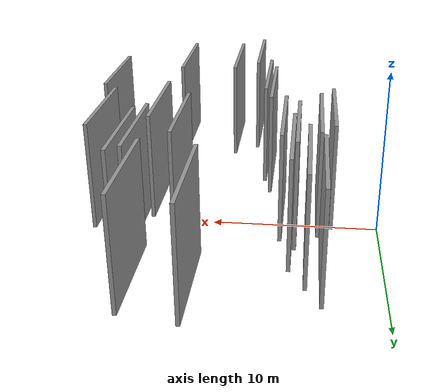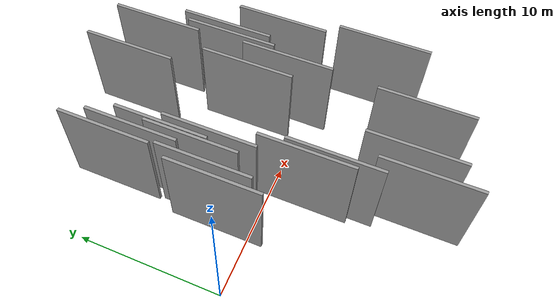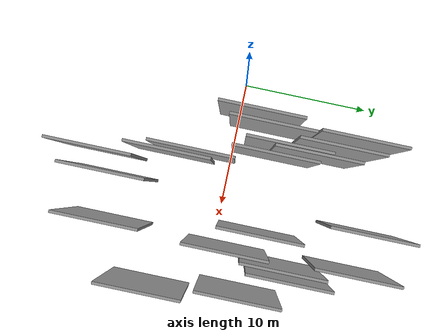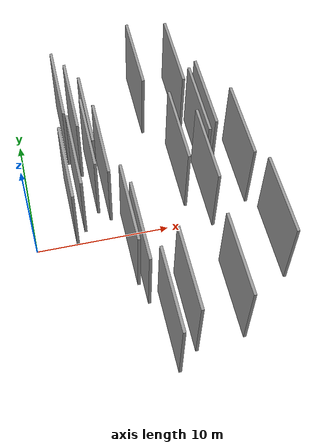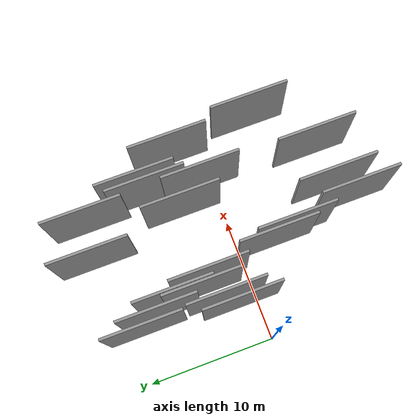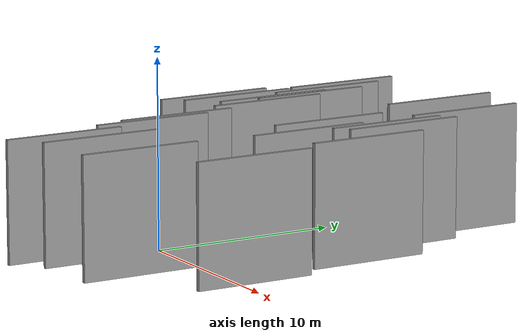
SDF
<sdf version="1.6">
 <world name="default">
  <scene>
   <sky><clouds><speed>12</speed></clouds></sky>
   <ambient>0.4 0.4 0.4 1</ambient>
   <background>0.7 0.7 0.7 1</background>
   <shadows>1</shadows>
  </scene>
  <gravity>0 0 -9.8066</gravity>
  <magnetic_field>6e-06 2.3e-05 -4.2e-05</magnetic_field>
  <physics default="0" name="default_physics" type="ode">
   <ode>
    <solver>
     <type>quick</type>
     <iters>10</iters>
     <sor>1.0</sor>
     <use_dynamic_moi_rescaling>0</use_dynamic_moi_rescaling>
    </solver>
    <constraints>
     <cfm>0</cfm>
     <erp>0.2</erp>
     <contact_max_correcting_vel>100</contact_max_correcting_vel>
     <contact_surface_layer>0.001</contact_surface_layer>
    </constraints>
   </ode>
   <max_step_size>0.004</max_step_size>
   <real_time_factor>1</real_time_factor>
   <real_time_update_rate>250</real_time_update_rate>
  </physics>
  <light name="sun" type="directional">
   <pose>0 0 10 0 0 0</pose>
   <diffuse>0.8 0.8 0.8 1</diffuse>
   <specular>0.2 0.2 0.2 1</specular>
   <attenuation>
    <range>1000</range>
    <constant>0.9</constant>
    <linear>0.01</linear>
    <quadratic>0.001</quadratic>
   </attenuation>
   <direction>-0.5 0.1 -0.9</direction>
  </light>
  <model name="grey_wall_1">
   <static>1</static>
   <pose>5.1587 5.8665 2.5 0.000000 0.000000 1.570796</pose>
   <link name="link">
    <pose>0 0 3.00 0 0 0</pose>
    <collision name="collision"><geometry><box><size>6.00 0.2 6.00</size></box></geometry></collision>
    <visual name="visual">
     <cast_shadows>0</cast_shadows>
     <geometry><box><size>6.00 0.2 6.00</size></box></geometry>
     <material>
      <script>
       <uri>model://grey_wall/materials/scripts</uri>
       <uri>model://grey_wall/materials/textures</uri>
       <name>vrc/grey_wall</name>
      </script>
     </material>
    </visual>
   </link>
  </model>
  <model name="grey_wall_2">
   <static>1</static>
   <pose>6.9605 -4.1079 2.5 0.000000 0.000000 1.570796</pose>
   <link name="link">
    <pose>0 0 3.00 0 0 0</pose>
    <collision name="collision"><geometry><box><size>6.00 0.2 6.00</size></box></geometry></collision>
    <visual name="visual">
     <cast_shadows>0</cast_shadows>
     <geometry><box><size>6.00 0.2 6.00</size></box></geometry>
     <material>
      <script>
       <uri>model://grey_wall/materials/scripts</uri>
       <uri>model://grey_wall/materials/textures</uri>
       <name>vrc/grey_wall</name>
      </script>
     </material>
    </visual>
   </link>
  </model>
  <model name="grey_wall_3">
   <static>1</static>
   <pose>3.0186 1.5339 2.5 0.000000 0.000000 1.570796</pose>
   <link name="link">
    <pose>0 0 3.00 0 0 0</pose>
    <collision name="collision"><geometry><box><size>6.00 0.2 6.00</size></box></geometry></collision>
    <visual name="visual">
     <cast_shadows>0</cast_shadows>
     <geometry><box><size>6.00 0.2 6.00</size></box></geometry>
     <material>
      <script>
       <uri>model://grey_wall/materials/scripts</uri>
       <uri>model://grey_wall/materials/textures</uri>
       <name>vrc/grey_wall</name>
      </script>
     </material>
    </visual>
   </link>
  </model>
  <model name="grey_wall_4">
   <static>1</static>
   <pose>9.2179 -8.1273 2.5 0.000000 0.000000 1.570796</pose>
   <link name="link">
    <pose>0 0 3.00 0 0 0</pose>
    <collision name="collision"><geometry><box><size>6.00 0.2 6.00</size></box></geometry></collision>
    <visual name="visual">
     <cast_shadows>0</cast_shadows>
     <geometry><box><size>6.00 0.2 6.00</size></box></geometry>
     <material>
      <script>
       <uri>model://grey_wall/materials/scripts</uri>
       <uri>model://grey_wall/materials/textures</uri>
       <name>vrc/grey_wall</name>
      </script>
     </material>
    </visual>
   </link>
  </model>
  <model name="grey_wall_5">
   <static>1</static>
   <pose>12.8485 1.0567 2.5 0.000000 0.000000 1.570796</pose>
   <link name="link">
    <pose>0 0 3.00 0 0 0</pose>
    <collision name="collision"><geometry><box><size>6.00 0.2 6.00</size></box></geometry></collision>
    <visual name="visual">
     <cast_shadows>0</cast_shadows>
     <geometry><box><size>6.00 0.2 6.00</size></box></geometry>
     <material>
      <script>
       <uri>model://grey_wall/materials/scripts</uri>
       <uri>model://grey_wall/materials/textures</uri>
       <name>vrc/grey_wall</name>
      </script>
     </material>
    </visual>
   </link>
  </model>
  <model name="grey_wall_6">
   <static>1</static>
   <pose>6.5647 -2.5653 2.5 0.000000 0.000000 1.570796</pose>
   <link name="link">
    <pose>0 0 3.00 0 0 0</pose>
    <collision name="collision"><geometry><box><size>6.00 0.2 6.00</size></box></geometry></collision>
    <visual name="visual">
     <cast_shadows>0</cast_shadows>
     <geometry><box><size>6.00 0.2 6.00</size></box></geometry>
     <material>
      <script>
       <uri>model://grey_wall/materials/scripts</uri>
       <uri>model://grey_wall/materials/textures</uri>
       <name>vrc/grey_wall</name>
      </script>
     </material>
    </visual>
   </link>
  </model>
  <model name="grey_wall_7">
   <static>1</static>
   <pose>3.7384 2.4550 2.5 0.000000 0.000000 1.570796</pose>
   <link name="link">
    <pose>0 0 3.00 0 0 0</pose>
    <collision name="collision"><geometry><box><size>6.00 0.2 6.00</size></box></geometry></collision>
    <visual name="visual">
     <cast_shadows>0</cast_shadows>
     <geometry><box><size>6.00 0.2 6.00</size></box></geometry>
     <material>
      <script>
       <uri>model://grey_wall/materials/scripts</uri>
       <uri>model://grey_wall/materials/textures</uri>
       <name>vrc/grey_wall</name>
      </script>
     </material>
    </visual>
   </link>
  </model>
  <model name="grey_wall_8">
   <static>1</static>
   <pose>3.5596 8.6978 2.5 0.000000 0.000000 1.570796</pose>
   <link name="link">
    <pose>0 0 3.00 0 0 0</pose>
    <collision name="collision"><geometry><box><size>6.00 0.2 6.00</size></box></geometry></collision>
    <visual name="visual">
     <cast_shadows>0</cast_shadows>
     <geometry><box><size>6.00 0.2 6.00</size></box></geometry>
     <material>
      <script>
       <uri>model://grey_wall/materials/scripts</uri>
       <uri>model://grey_wall/materials/textures</uri>
       <name>vrc/grey_wall</name>
      </script>
     </material>
    </visual>
   </link>
  </model>
  <model name="grey_wall_9">
   <static>1</static>
   <pose>7.8035 -9.3064 2.5 0.000000 0.000000 1.570796</pose>
   <link name="link">
    <pose>0 0 3.00 0 0 0</pose>
    <collision name="collision"><geometry><box><size>6.00 0.2 6.00</size></box></geometry></collision>
    <visual name="visual">
     <cast_shadows>0</cast_shadows>
     <geometry><box><size>6.00 0.2 6.00</size></box></geometry>
     <material>
      <script>
       <uri>model://grey_wall/materials/scripts</uri>
       <uri>model://grey_wall/materials/textures</uri>
       <name>vrc/grey_wall</name>
      </script>
     </material>
    </visual>
   </link>
  </model>
  <model name="grey_wall_10">
   <static>1</static>
   <pose>11.3080 3.1218 2.5 0.000000 0.000000 1.570796</pose>
   <link name="link">
    <pose>0 0 3.00 0 0 0</pose>
    <collision name="collision"><geometry><box><size>6.00 0.2 6.00</size></box></geometry></collision>
    <visual name="visual">
     <cast_shadows>0</cast_shadows>
     <geometry><box><size>6.00 0.2 6.00</size></box></geometry>
     <material>
      <script>
       <uri>model://grey_wall/materials/scripts</uri>
       <uri>model://grey_wall/materials/textures</uri>
       <name>vrc/grey_wall</name>
      </script>
     </material>
    </visual>
   </link>
  </model>
  <model name="grey_wall_11">
   <static>1</static>
   <pose>13.9393 5.6763 2.5 0.000000 0.000000 1.570796</pose>
   <link name="link">
    <pose>0 0 3.00 0 0 0</pose>
    <collision name="collision"><geometry><box><size>6.00 0.2 6.00</size></box></geometry></collision>
    <visual name="visual">
     <cast_shadows>0</cast_shadows>
     <geometry><box><size>6.00 0.2 6.00</size></box></geometry>
     <material>
      <script>
       <uri>model://grey_wall/materials/scripts</uri>
       <uri>model://grey_wall/materials/textures</uri>
       <name>vrc/grey_wall</name>
      </script>
     </material>
    </visual>
   </link>
  </model>
  <model name="grey_wall_12">
   <static>1</static>
   <pose>15.7667 2.5458 2.5 0.000000 0.000000 1.570796</pose>
   <link name="link">
    <pose>0 0 3.00 0 0 0</pose>
    <collision name="collision"><geometry><box><size>6.00 0.2 6.00</size></box></geometry></collision>
    <visual name="visual">
     <cast_shadows>0</cast_shadows>
     <geometry><box><size>6.00 0.2 6.00</size></box></geometry>
     <material>
      <script>
       <uri>model://grey_wall/materials/scripts</uri>
       <uri>model://grey_wall/materials/textures</uri>
       <name>vrc/grey_wall</name>
      </script>
     </material>
    </visual>
   </link>
  </model>
  <model name="grey_wall_13">
   <static>1</static>
   <pose>13.3102 5.1180 2.5 0.000000 0.000000 1.570796</pose>
   <link name="link">
    <pose>0 0 3.00 0 0 0</pose>
    <collision name="collision"><geometry><box><size>6.00 0.2 6.00</size></box></geometry></collision>
    <visual name="visual">
     <cast_shadows>0</cast_shadows>
     <geometry><box><size>6.00 0.2 6.00</size></box></geometry>
     <material>
      <script>
       <uri>model://grey_wall/materials/scripts</uri>
       <uri>model://grey_wall/materials/textures</uri>
       <name>vrc/grey_wall</name>
      </script>
     </material>
    </visual>
   </link>
  </model>
  <model name="grey_wall_14">
   <static>1</static>
   <pose>12.6598 10.0769 2.5 0.000000 0.000000 1.570796</pose>
   <link name="link">
    <pose>0 0 3.00 0 0 0</pose>
    <collision name="collision"><geometry><box><size>6.00 0.2 6.00</size></box></geometry></collision>
    <visual name="visual">
     <cast_shadows>0</cast_shadows>
     <geometry><box><size>6.00 0.2 6.00</size></box></geometry>
     <material>
      <script>
       <uri>model://grey_wall/materials/scripts</uri>
       <uri>model://grey_wall/materials/textures</uri>
       <name>vrc/grey_wall</name>
      </script>
     </material>
    </visual>
   </link>
  </model>
  <model name="grey_wall_15">
   <static>1</static>
   <pose>16.5736 -4.1058 2.5 0.000000 0.000000 1.570796</pose>
   <link name="link">
    <pose>0 0 3.00 0 0 0</pose>
    <collision name="collision"><geometry><box><size>6.00 0.2 6.00</size></box></geometry></collision>
    <visual name="visual">
     <cast_shadows>0</cast_shadows>
     <geometry><box><size>6.00 0.2 6.00</size></box></geometry>
     <material>
      <script>
       <uri>model://grey_wall/materials/scripts</uri>
       <uri>model://grey_wall/materials/textures</uri>
       <name>vrc/grey_wall</name>
      </script>
     </material>
    </visual>
   </link>
  </model>
  <model name="grey_wall_16">
   <static>1</static>
   <pose>4.3274 7.3568 2.5 0.000000 0.000000 1.570796</pose>
   <link name="link">
    <pose>0 0 3.00 0 0 0</pose>
    <collision name="collision"><geometry><box><size>6.00 0.2 6.00</size></box></geometry></collision>
    <visual name="visual">
     <cast_shadows>0</cast_shadows>
     <geometry><box><size>6.00 0.2 6.00</size></box></geometry>
     <material>
      <script>
       <uri>model://grey_wall/materials/scripts</uri>
       <uri>model://grey_wall/materials/textures</uri>
       <name>vrc/grey_wall</name>
      </script>
     </material>
    </visual>
   </link>
  </model>
  <model name="grey_wall_17">
   <static>1</static>
   <pose>12.5583 -7.8421 2.5 0.000000 0.000000 1.570796</pose>
   <link name="link">
    <pose>0 0 3.00 0 0 0</pose>
    <collision name="collision"><geometry><box><size>6.00 0.2 6.00</size></box></geometry></collision>
    <visual name="visual">
     <cast_shadows>0</cast_shadows>
     <geometry><box><size>6.00 0.2 6.00</size></box></geometry>
     <material>
      <script>
       <uri>model://grey_wall/materials/scripts</uri>
       <uri>model://grey_wall/materials/textures</uri>
       <name>vrc/grey_wall</name>
      </script>
     </material>
    </visual>
   </link>
  </model>
  <model name="grey_wall_18">
   <static>1</static>
   <pose>9.7341 10.5441 2.5 0.000000 0.000000 1.570796</pose>
   <link name="link">
    <pose>0 0 3.00 0 0 0</pose>
    <collision name="collision"><geometry><box><size>6.00 0.2 6.00</size></box></geometry></collision>
    <visual name="visual">
     <cast_shadows>0</cast_shadows>
     <geometry><box><size>6.00 0.2 6.00</size></box></geometry>
     <material>
      <script>
       <uri>model://grey_wall/materials/scripts</uri>
       <uri>model://grey_wall/materials/textures</uri>
       <name>vrc/grey_wall</name>
      </script>
     </material>
    </visual>
   </link>
  </model>
  <model name="grey_wall_19">
   <static>1</static>
   <pose>4.9330 3.8317 2.5 0.000000 0.000000 1.570796</pose>
   <link name="link">
    <pose>0 0 3.00 0 0 0</pose>
    <collision name="collision"><geometry><box><size>6.00 0.2 6.00</size></box></geometry></collision>
    <visual name="visual">
     <cast_shadows>0</cast_shadows>
     <geometry><box><size>6.00 0.2 6.00</size></box></geometry>
     <material>
      <script>
       <uri>model://grey_wall/materials/scripts</uri>
       <uri>model://grey_wall/materials/textures</uri>
       <name>vrc/grey_wall</name>
      </script>
     </material>
    </visual>
   </link>
  </model>
  <model name="grey_wall_20">
   <static>1</static>
   <pose>5.7165 3.0356 2.5 0.000000 0.000000 1.570796</pose>
   <link name="link">
    <pose>0 0 3.00 0 0 0</pose>
    <collision name="collision"><geometry><box><size>6.00 0.2 6.00</size></box></geometry></collision>
    <visual name="visual">
     <cast_shadows>0</cast_shadows>
     <geometry><box><size>6.00 0.2 6.00</size></box></geometry>
     <material>
      <script>
       <uri>model://grey_wall/materials/scripts</uri>
       <uri>model://grey_wall/materials/textures</uri>
       <name>vrc/grey_wall</name>
      </script>
     </material>
    </visual>
   </link>
  </model>
 </world>
</sdf>
